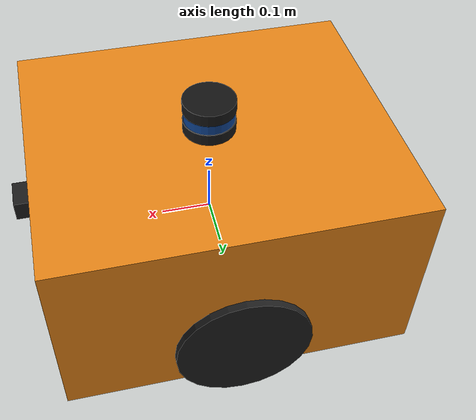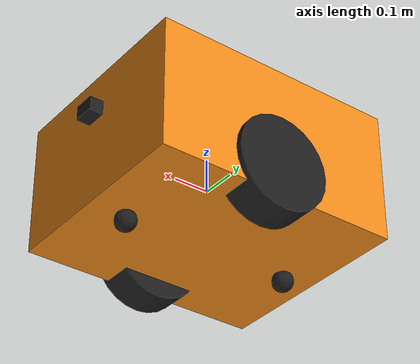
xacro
<?xml version='1.0' encoding='UTF-8'?>
<robot xmlns:xacro="http://www.ros.org/wiki/xacro" name="diffbot">

  <!-- launch から渡される -->
  <xacro:arg name="use_mock_hardware" default="false"/>

  <!-- Material definitions -->
  <xacro:include filename="$(find ros2_control_demo_description)/diffbot/urdf/diffbot.materials.xacro"/>

  <!-- 前後に設置する低摩擦の球形支持 -->
  <xacro:macro name="support_ball" params="prefix name x z radius mass">

    <joint name="${prefix}${name}_joint" type="fixed">
      <parent link="${prefix}base_link"/>
      <child link="${prefix}${name}"/>
      <origin xyz="${x} 0 ${z}" rpy="0 0 0"/>
    </joint>

    <link name="${prefix}${name}">
      <collision>
        <geometry>
          <sphere radius="${radius}"/>
        </geometry>
      </collision>

      <visual>
        <geometry>
          <sphere radius="${radius}"/>
        </geometry>
        <material name="black"/>
      </visual>

      <inertial>
        <mass value="${mass}"/>
        <inertia
          ixx="${2.0 / 5.0 * mass * radius * radius}"
          ixy="0"
          ixz="0"
          iyy="${2.0 / 5.0 * mass * radius * radius}"
          iyz="0"
          izz="${2.0 / 5.0 * mass * radius * radius}"/>
      </inertial>
    </link>

    <gazebo reference="${prefix}${name}">
      <mu1>0.01</mu1>
      <mu2>0.01</mu2>
    </gazebo>

  </xacro:macro>

  <xacro:macro name="diffbot" params="prefix">

    <!--
      base_link は地面から 0.215 m。
      車体上端は 0.43 m。
      車体下端は 0.05 m。
      前後の補助球は床から 1 mm 浮く。
    -->

    <xacro:property name="PI" value="3.1415926535897931"/>

    <!-- Robot body -->
    <xacro:property name="base_bottom_raise" value="0.05"/>
    <xacro:property name="base_box_height" value="${base_height - base_bottom_raise}"/>
    <xacro:property name="base_box_center_z" value="${base_bottom_raise / 2}"/>
    <xacro:property name="base_length" value="0.70"/>
    <xacro:property name="base_width" value="0.60"/>
    <xacro:property name="base_height" value="0.43"/>

    <!-- Placeholder body mass -->
    <xacro:property name="base_mass" value="0.3"/>

    <!-- Wheels -->
    <xacro:property name="wheel_mass" value="0.3"/>
    <xacro:property name="wheel_len" value="0.10"/>
    <xacro:property name="wheel_radius" value="0.135"/>
    <xacro:property name="wheel_separation" value="0.53"/>

    <!-- 駆動輪を主な接地点にし、前後の傾きを補助球で支える -->
    <xacro:property name="support_radius" value="0.03"/>
    <xacro:property name="support_mass" value="0.02"/>
    <xacro:property name="support_x" value="0.25"/>
    <xacro:property name="support_ground_clearance" value="0.001"/>

    <!-- VLP-16 -->
    <xacro:property name="vlp_bottom_height_from_ground" value="0.43"/>
    <xacro:property name="vlp_height" value="0.07"/>

    <xacro:property
      name="base_link_height_from_ground"
      value="${base_height/2}"/>

    <xacro:property
      name="wheel_center_z"
      value="${wheel_radius - base_link_height_from_ground}"/>

    <xacro:property
      name="wheel_y"
      value="${wheel_separation/2}"/>

    <xacro:property
      name="support_center_z"
      value="${support_radius + support_ground_clearance - base_link_height_from_ground}"/>

    <xacro:property
      name="vlp_center_z"
      value="${vlp_bottom_height_from_ground + vlp_height/2 - base_link_height_from_ground}"/>

    <!-- =========================================================
         Base link
         ========================================================= -->

    <link name="${prefix}base_link">

      <collision>
        <origin xyz="0 0 ${base_box_center_z}" rpy="0 0 0"/>
        <geometry>
          <box size="${base_length} ${base_width} ${base_box_height}"/>
        </geometry>
      </collision>

      <visual>
        <origin xyz="0 0 ${base_box_center_z}" rpy="0 0 0"/>
        <geometry>
          <box size="${base_length} ${base_width} ${base_box_height}"/>
        </geometry>
        <material name="orange"/>
      </visual>

      <inertial>
        <origin xyz="0 0 ${base_box_center_z}" rpy="0 0 0"/>
        <mass value="${base_mass}"/>

        <inertia
          ixx="${base_mass / 12.0 * (base_width*base_width + base_box_height*base_box_height)}"
          ixy="0.0"
          ixz="0.0"
          iyy="${base_mass / 12.0 * (base_length*base_length + base_box_height*base_box_height)}"
          iyz="0.0"
          izz="${base_mass / 12.0 * (base_length*base_length + base_width*base_width)}"/>
      </inertial>

    </link>

    <!-- =========================================================
         Left wheel
         ========================================================= -->

    <joint name="${prefix}left_wheel_joint" type="continuous">

      <parent link="${prefix}base_link"/>
      <child link="${prefix}left_wheel"/>

      <origin
        xyz="0 ${wheel_y} ${wheel_center_z}"
        rpy="0 0 0"/>

      <axis xyz="0 1 0"/>

      <dynamics damping="0.2"/>

      <limit
        effort="100"
        velocity="3.0"/>

    </joint>

    <link name="${prefix}left_wheel">

      <collision>
        <origin
          xyz="0 0 0"
          rpy="${PI/2} 0 0"/>

        <geometry>
          <cylinder
            length="${wheel_len}"
            radius="${wheel_radius}"/>
        </geometry>
      </collision>

      <visual>
        <origin
          xyz="0 0 0"
          rpy="${PI/2} 0 0"/>

        <geometry>
          <cylinder
            length="${wheel_len}"
            radius="${wheel_radius}"/>
        </geometry>

        <material name="black"/>
      </visual>

      <inertial>
        <origin
          xyz="0 0 0"
          rpy="${PI/2} 0 0"/>

        <mass value="${wheel_mass}"/>

        <inertia
          ixx="${wheel_mass / 12.0 * (3*wheel_radius*wheel_radius + wheel_len*wheel_len)}"
          ixy="0.0"
          ixz="0.0"
          iyy="${wheel_mass / 12.0 * (3*wheel_radius*wheel_radius + wheel_len*wheel_len)}"
          iyz="0.0"
          izz="${wheel_mass / 2.0 * wheel_radius*wheel_radius}"/>
      </inertial>

    </link>

    <!-- =========================================================
         Right wheel
         ========================================================= -->

    <joint name="${prefix}right_wheel_joint" type="continuous">

      <parent link="${prefix}base_link"/>
      <child link="${prefix}right_wheel"/>

      <origin
        xyz="0 -${wheel_y} ${wheel_center_z}"
        rpy="0 0 0"/>

      <axis xyz="0 1 0"/>

      <dynamics damping="0.2"/>

      <limit
        effort="100"
        velocity="3.0"/>

    </joint>

    <link name="${prefix}right_wheel">

      <collision>
        <origin
          xyz="0 0 0"
          rpy="${PI/2} 0 0"/>

        <geometry>
          <cylinder
            length="${wheel_len}"
            radius="${wheel_radius}"/>
        </geometry>
      </collision>

      <visual>
        <origin
          xyz="0 0 0"
          rpy="${PI/2} 0 0"/>

        <geometry>
          <cylinder
            length="${wheel_len}"
            radius="${wheel_radius}"/>
        </geometry>

        <material name="black"/>
      </visual>

      <inertial>
        <origin
          xyz="0 0 0"
          rpy="${PI/2} 0 0"/>

        <mass value="${wheel_mass}"/>

        <inertia
          ixx="${wheel_mass / 12.0 * (3*wheel_radius*wheel_radius + wheel_len*wheel_len)}"
          ixy="0.0"
          ixz="0.0"
          iyy="${wheel_mass / 12.0 * (3*wheel_radius*wheel_radius + wheel_len*wheel_len)}"
          iyz="0.0"
          izz="${wheel_mass / 2.0 * wheel_radius*wheel_radius}"/>
      </inertial>

    </link>

    <!-- 前後の球形補助接地点 -->

    <xacro:support_ball
      prefix="${prefix}"
      name="front_support"
      x="${support_x}"
      z="${support_center_z}"
      radius="${support_radius}"
      mass="${support_mass}"/>

    <xacro:support_ball
      prefix="${prefix}"
      name="rear_support"
      x="${-support_x}"
      z="${support_center_z}"
      radius="${support_radius}"
      mass="${support_mass}"/>

    <!-- =========================================================
         Velodyne VLP-16
         ========================================================= -->

    <joint name="${prefix}scan_joint" type="fixed">

      <parent link="${prefix}base_link"/>
      <child link="${prefix}velodyne"/>

      <origin
        xyz="0 0 ${vlp_center_z}"
        rpy="0 0 0"/>

    </joint>

    <link name="${prefix}velodyne">

      <!-- VLP-16 下部 -->

      <visual>
        <origin
          xyz="0 0 -0.023"
          rpy="0 0 0"/>

        <geometry>
          <cylinder
            length="0.024"
            radius="0.052"/>
        </geometry>

        <material name="velodyne_black">
          <color rgba="0.08 0.08 0.08 1.0"/>
        </material>
      </visual>

      <!-- VLP-16 中央の青い部分 -->

      <visual>
        <origin
          xyz="0 0 0"
          rpy="0 0 0"/>

        <geometry>
          <cylinder
            length="0.022"
            radius="0.050"/>
        </geometry>

        <material name="velodyne_blue">
          <color rgba="0.05 0.25 0.55 1.0"/>
        </material>
      </visual>

      <!-- VLP-16 上部 -->

      <visual>
        <origin
          xyz="0 0 0.023"
          rpy="0 0 0"/>

        <geometry>
          <cylinder
            length="0.024"
            radius="0.052"/>
        </geometry>

        <material name="velodyne_black_top">
          <color rgba="0.08 0.08 0.08 1.0"/>
        </material>
      </visual>

      <collision>
        <origin
          xyz="0 0 0"
          rpy="0 0 0"/>

        <geometry>
          <cylinder
            length="${vlp_height}"
            radius="0.052"/>
        </geometry>
      </collision>

      <inertial>
        <mass value="0.114"/>
        <origin xyz="0 0 0"/>

        <inertia
          ixx="0.001"
          ixy="0.0"
          ixz="0.0"
          iyy="0.001"
          iyz="0.0"
          izz="0.001"/>
      </inertial>

    </link>

    <!-- =========================================================
         Front RGB Camera
         ========================================================= -->

    <joint name="${prefix}camera_joint" type="fixed">

      <parent link="${prefix}base_link"/>
      <child link="${prefix}camera_link"/>

      <!--
        base_length = 0.70 m
        車体前端は x=0.35 m 付近なので
        x=0.37 m として少し前へ出す
      -->
      <origin
        xyz="0.37 0 0.10"
        rpy="0 0 0"/>

    </joint>

    <link name="${prefix}camera_link">

      <visual>
        <geometry>
          <box size="0.04 0.06 0.04"/>
        </geometry>
        <material name="black"/>
      </visual>

      <inertial>
        <mass value="0.05"/>

        <inertia
          ixx="0.00002"
          ixy="0"
          ixz="0"
          iyy="0.00002"
          iyz="0"
          izz="0.00002"/>
      </inertial>

    </link>

    <!--
      ROS Camera Optical Frame
      x = 右
      y = 下
      z = 前
    -->

    <joint name="${prefix}camera_optical_joint" type="fixed">

      <parent link="${prefix}camera_link"/>
      <child link="${prefix}camera_optical_frame"/>

      <origin
        xyz="0 0 0"
        rpy="-${PI/2} 0 -${PI/2}"/>

    </joint>

    <link name="${prefix}camera_optical_frame"/>

  </xacro:macro>

  <!-- =========================================================
       Robot instance
       ========================================================= -->

  <xacro:diffbot prefix=""/>

  <!-- =========================================================
       Gazebo GPU LiDAR + IMU
       ========================================================= -->

  <gazebo reference="velodyne">

    <!-- GPU LiDAR -->

    <sensor
      name="velodyne_gpu_lidar"
      type="gpu_lidar">

      <topic>velodyne</topic>

      <update_rate>10</update_rate>

      <ray>

        <scan>

          <horizontal>
            <samples>1800</samples>
            <resolution>1</resolution>
            <min_angle>-3.141592653589793</min_angle>
            <max_angle>3.141592653589793</max_angle>
          </horizontal>

          <vertical>
            <samples>16</samples>
            <resolution>1</resolution>
            <min_angle>-0.261799</min_angle>
            <max_angle>0.261799</max_angle>
          </vertical>

        </scan>

        <range>
          <min>0.3</min>
          <max>100.0</max>
          <resolution>0.01</resolution>
        </range>

      </ray>

      <always_on>true</always_on>
      <visualize>true</visualize>

    </sensor>

    <!-- IMU -->

    <sensor
      name="imu_sensor"
      type="imu">

      <topic>imu</topic>

      <update_rate>100</update_rate>

      <always_on>true</always_on>
      <visualize>false</visualize>

    </sensor>

  </gazebo>

  <!-- =========================================================
       Gazebo RGB Camera
       ========================================================= -->

  <gazebo reference="camera_link">

    <sensor
      name="front_camera"
      type="camera">

      <always_on>true</always_on>

      <update_rate>30</update_rate>

      <visualize>true</visualize>

      <!-- Gazebo側の画像トピック -->
      <topic>/camera/image_raw</topic>

      <camera>

        <!-- Gazebo側のCameraInfoトピック -->
        <camera_info_topic>
          /camera/camera_info
        </camera_info_topic>

        <!-- 水平画角 60 deg -->
        <horizontal_fov>2.0943951024</horizontal_fov>

        <image>
          <width>640</width>
          <height>480</height>
          <format>R8G8B8</format>
        </image>

        <clip>
          <near>0.05</near>
          <far>100.0</far>
        </clip>

      </camera>

    </sensor>

  </gazebo>

  <!-- =========================================================
       ros2_control for Gazebo
       ========================================================= -->

  <ros2_control
    name="GazeboSimSystem"
    type="system">

    <hardware>
      <plugin>gz_ros2_control/GazeboSimSystem</plugin>
    </hardware>

    <joint name="left_wheel_joint">

      <command_interface name="velocity"/>

      <state_interface name="position"/>
      <state_interface name="velocity"/>

    </joint>

    <joint name="right_wheel_joint">

      <command_interface name="velocity"/>

      <state_interface name="position"/>
      <state_interface name="velocity"/>

    </joint>

  </ros2_control>

  <!-- =========================================================
       gz_ros2_control plugin
       ========================================================= -->

  <gazebo>

    <plugin
      filename="gz_ros2_control-system"
      name="gz_ros2_control::GazeboSimROS2ControlPlugin">

      <robot_param>
        robot_description
      </robot_param>

      <robot_param_node>
        robot_state_publisher
      </robot_param_node>

      <parameters>
        $(find lab_navigation)/params/sim_diff_drive_controller.yaml
      </parameters>

    </plugin>

  </gazebo>

</robot>
